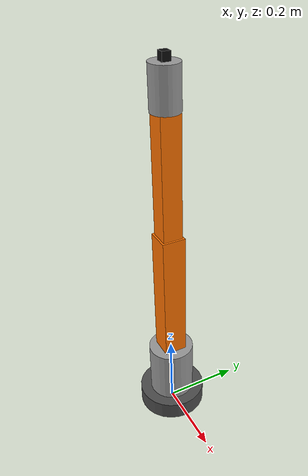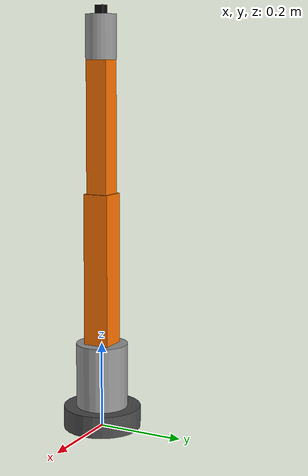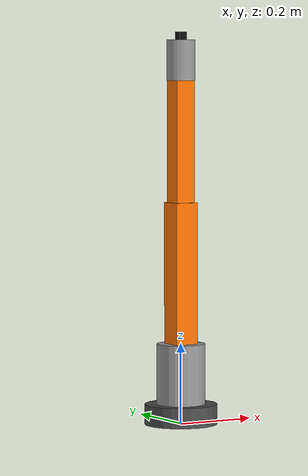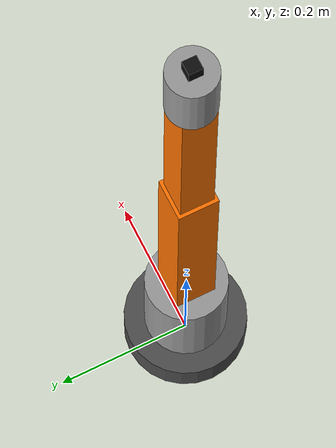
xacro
<?xml version="1.0"?>
<robot name="four_dof_arm" xmlns:xacro="http://www.ros.org/wiki/xacro">

  <!-- ============================ Properties ========================= -->
  <xacro:property name="PI" value="3.14159265359"/>

  <!-- base -->
  <xacro:property name="base_radius" value="0.09"/>
  <xacro:property name="base_length" value="0.05"/>
  <xacro:property name="base_mass"   value="1.5"/>

  <!-- link1 : waist column (rotates about Z relative to base) -->
  <xacro:property name="link1_radius" value="0.06"/>
  <xacro:property name="link1_length" value="0.15"/>
  <xacro:property name="link1_mass"   value="1.0"/>

  <!-- link2 : upper arm (box, rotates about Y - shoulder) -->
  <xacro:property name="link2_x" value="0.06"/>
  <xacro:property name="link2_y" value="0.06"/>
  <xacro:property name="link2_z" value="0.35"/>
  <xacro:property name="link2_mass" value="1.2"/>

  <!-- link3 : forearm (box, rotates about Y - elbow) -->
  <xacro:property name="link3_x" value="0.05"/>
  <xacro:property name="link3_y" value="0.05"/>
  <xacro:property name="link3_z" value="0.30"/>
  <xacro:property name="link3_mass" value="0.9"/>

  <!-- link4 : wrist (cylinder, rotates about Y - wrist pitch) -->
  <xacro:property name="link4_radius" value="0.035"/>
  <xacro:property name="link4_length" value="0.10"/>
  <xacro:property name="link4_mass"   value="0.4"/>

  <!-- tool_link : end-effector marker (fixed to link4) -->
  <xacro:property name="tool_side" value="0.02"/>
  <xacro:property name="tool_mass" value="0.05"/>

  <!-- ============================ Materials =========================== -->
  <material name="orange"><color rgba="1.0 0.45 0.0 1.0"/></material>
  <material name="grey">  <color rgba="0.6 0.6 0.6 1.0"/></material>
  <material name="dark_grey"><color rgba="0.3 0.3 0.3 1.0"/></material>
  <material name="black"><color rgba="0.05 0.05 0.05 1.0"/></material>

  <!-- ============================ Inertial Macros ===================== -->
  <xacro:macro name="cylinder_inertial" params="mass r l">
    <inertial>
      <mass value="${mass}"/>
      <inertia ixx="${mass*(3*r*r+l*l)/12}" ixy="0" ixz="0"
               iyy="${mass*(3*r*r+l*l)/12}" iyz="0"
               izz="${mass*r*r/2}"/>
    </inertial>
  </xacro:macro>

  <xacro:macro name="box_inertial" params="mass x y z">
    <inertial>
      <mass value="${mass}"/>
      <inertia ixx="${mass*(y*y+z*z)/12}" ixy="0" ixz="0"
               iyy="${mass*(x*x+z*z)/12}" iyz="0"
               izz="${mass*(x*x+y*y)/12}"/>
    </inertial>
  </xacro:macro>

  <!-- ============================ world / base ======================== -->
  <link name="world"/>

  <joint name="world_to_base" type="fixed">
    <parent link="world"/>
    <child link="base_link"/>
    <origin xyz="0 0 0" rpy="0 0 0"/>
  </joint>

  <link name="base_link">
    <visual>
      <origin xyz="0 0 ${base_length/2}" rpy="0 0 0"/>
      <geometry><cylinder radius="${base_radius}" length="${base_length}"/></geometry>
      <material name="dark_grey"/>
    </visual>
    <collision>
      <origin xyz="0 0 ${base_length/2}" rpy="0 0 0"/>
      <geometry><cylinder radius="${base_radius}" length="${base_length}"/></geometry>
    </collision>
    <xacro:cylinder_inertial mass="${base_mass}" r="${base_radius}" l="${base_length}"/>
  </link>

  <!-- ============================ Joint 1 : waist (Z) ================= -->
  <joint name="joint1" type="revolute">
    <parent link="base_link"/>
    <child link="link1"/>
    <origin xyz="0 0 ${base_length}" rpy="0 0 0"/>
    <axis xyz="0 0 1"/>
    <limit lower="${-PI}" upper="${PI}" effort="50.0" velocity="2.0"/>
    <dynamics damping="0.2" friction="0.1"/>
  </joint>

  <link name="link1">
    <visual>
      <origin xyz="0 0 ${link1_length/2}" rpy="0 0 0"/>
      <geometry><cylinder radius="${link1_radius}" length="${link1_length}"/></geometry>
      <material name="grey"/>
    </visual>
    <collision>
      <origin xyz="0 0 ${link1_length/2}" rpy="0 0 0"/>
      <geometry><cylinder radius="${link1_radius}" length="${link1_length}"/></geometry>
    </collision>
    <xacro:cylinder_inertial mass="${link1_mass}" r="${link1_radius}" l="${link1_length}"/>
  </link>

  <!-- ============================ Joint 2 : shoulder (Y) ============== -->
  <joint name="joint2" type="revolute">
    <parent link="link1"/>
    <child link="link2"/>
    <origin xyz="0 0 ${link1_length}" rpy="0 0 0"/>
    <axis xyz="0 1 0"/>
    <limit lower="${-PI/2}" upper="${PI/2}" effort="80.0" velocity="1.5"/>
    <dynamics damping="0.2" friction="0.1"/>
  </joint>

  <link name="link2">
    <visual>
      <origin xyz="0 0 ${link2_z/2}" rpy="0 0 0"/>
      <geometry><box size="${link2_x} ${link2_y} ${link2_z}"/></geometry>
      <material name="orange"/>
    </visual>
    <collision>
      <origin xyz="0 0 ${link2_z/2}" rpy="0 0 0"/>
      <geometry><box size="${link2_x} ${link2_y} ${link2_z}"/></geometry>
    </collision>
    <xacro:box_inertial mass="${link2_mass}" x="${link2_x}" y="${link2_y}" z="${link2_z}"/>
  </link>

  <!-- ============================ Joint 3 : elbow (Y) ================= -->
  <joint name="joint3" type="revolute">
    <parent link="link2"/>
    <child link="link3"/>
    <origin xyz="0 0 ${link2_z}" rpy="0 0 0"/>
    <axis xyz="0 1 0"/>
    <limit lower="${-5*PI/6}" upper="${5*PI/6}" effort="60.0" velocity="1.5"/>
    <dynamics damping="0.2" friction="0.1"/>
  </joint>

  <link name="link3">
    <visual>
      <origin xyz="0 0 ${link3_z/2}" rpy="0 0 0"/>
      <geometry><box size="${link3_x} ${link3_y} ${link3_z}"/></geometry>
      <material name="orange"/>
    </visual>
    <collision>
      <origin xyz="0 0 ${link3_z/2}" rpy="0 0 0"/>
      <geometry><box size="${link3_x} ${link3_y} ${link3_z}"/></geometry>
    </collision>
    <xacro:box_inertial mass="${link3_mass}" x="${link3_x}" y="${link3_y}" z="${link3_z}"/>
  </link>

  <!-- ============================ Joint 4 : wrist (Y) ================= -->
  <joint name="joint4" type="revolute">
    <parent link="link3"/>
    <child link="link4"/>
    <origin xyz="0 0 ${link3_z}" rpy="0 0 0"/>
    <axis xyz="0 1 0"/>
    <limit lower="${-PI/2}" upper="${PI/2}" effort="20.0" velocity="2.0"/>
    <dynamics damping="0.1" friction="0.05"/>
  </joint>

  <link name="link4">
    <visual>
      <origin xyz="0 0 ${link4_length/2}" rpy="0 0 0"/>
      <geometry><cylinder radius="${link4_radius}" length="${link4_length}"/></geometry>
      <material name="grey"/>
    </visual>
    <collision>
      <origin xyz="0 0 ${link4_length/2}" rpy="0 0 0"/>
      <geometry><cylinder radius="${link4_radius}" length="${link4_length}"/></geometry>
    </collision>
    <xacro:cylinder_inertial mass="${link4_mass}" r="${link4_radius}" l="${link4_length}"/>
  </link>

  <!-- ============================ Tool / End-Effector (fixed) ========= -->
  <joint name="tool_joint" type="fixed">
    <parent link="link4"/>
    <child link="tool_link"/>
    <origin xyz="0 0 ${link4_length}" rpy="0 0 0"/>
  </joint>

  <link name="tool_link">
    <visual>
      <origin xyz="0 0 ${tool_side/2}" rpy="0 0 0"/>
      <geometry><box size="${tool_side} ${tool_side} ${tool_side}"/></geometry>
      <material name="black"/>
    </visual>
    <collision>
      <origin xyz="0 0 ${tool_side/2}" rpy="0 0 0"/>
      <geometry><box size="${tool_side} ${tool_side} ${tool_side}"/></geometry>
    </collision>
    <xacro:box_inertial mass="${tool_mass}" x="${tool_side}" y="${tool_side}" z="${tool_side}"/>
  </link>

</robot>
